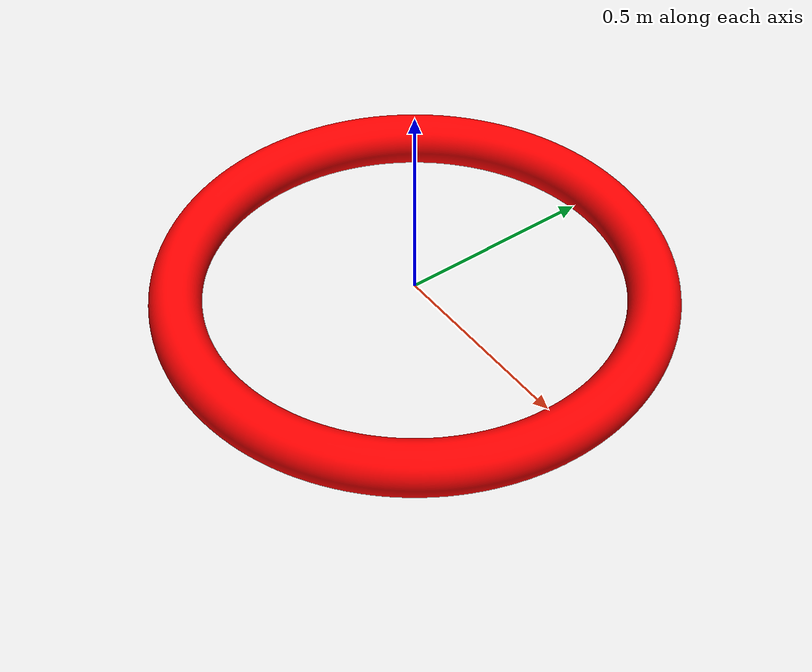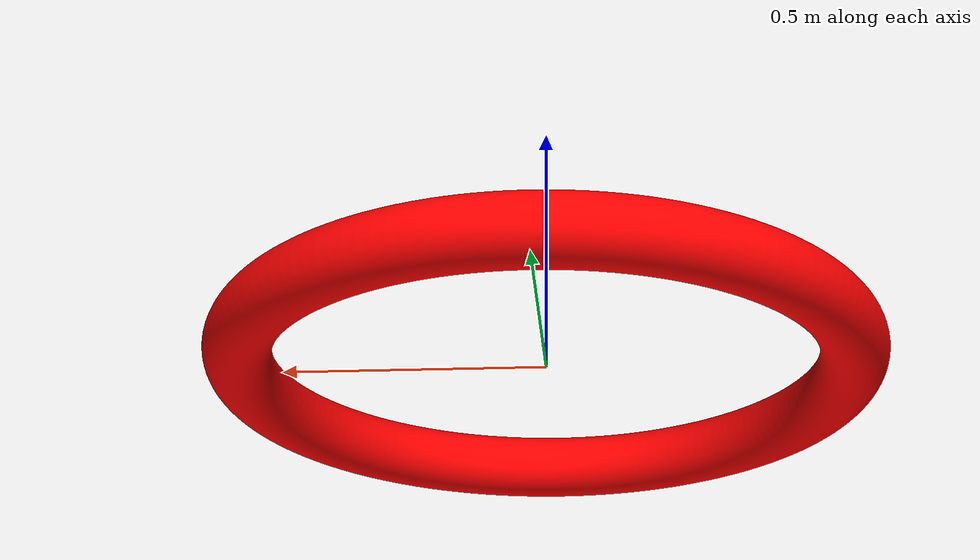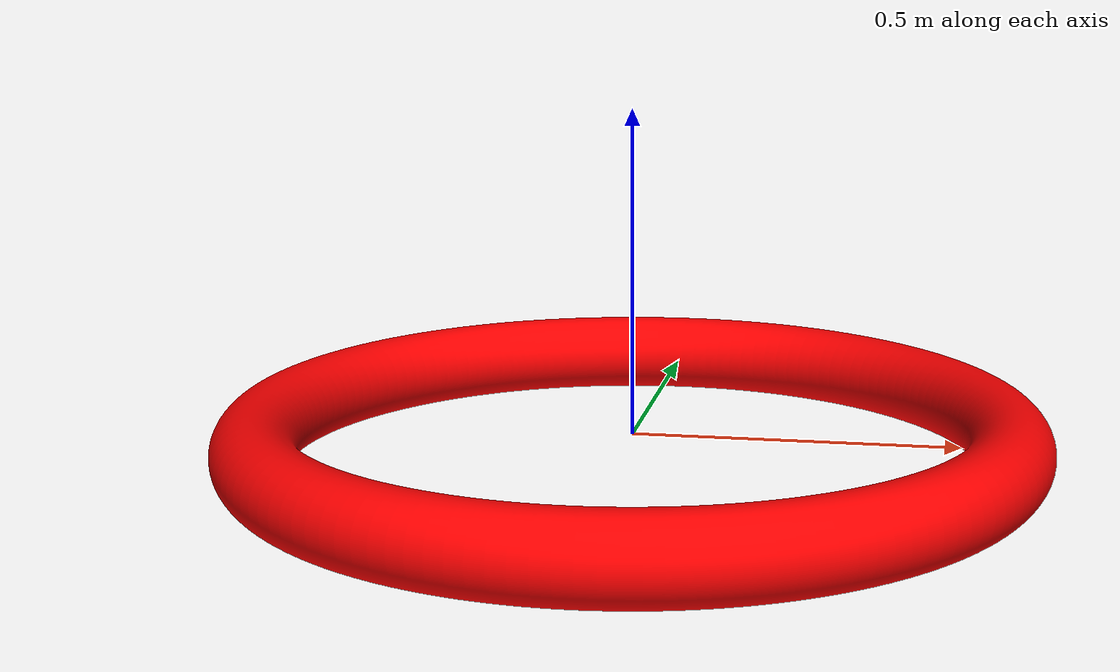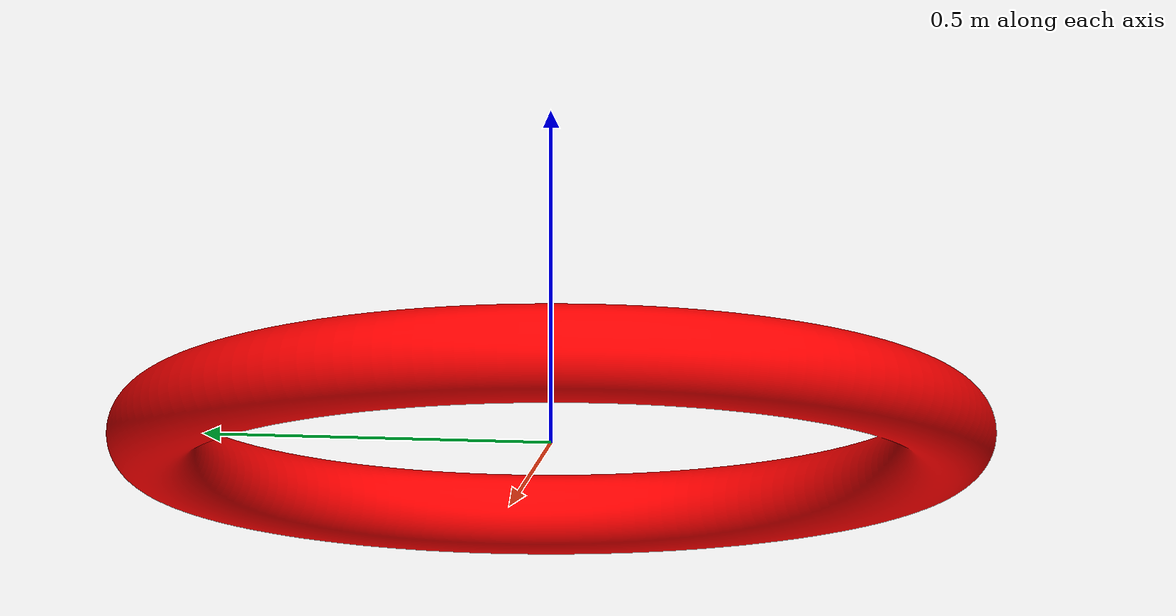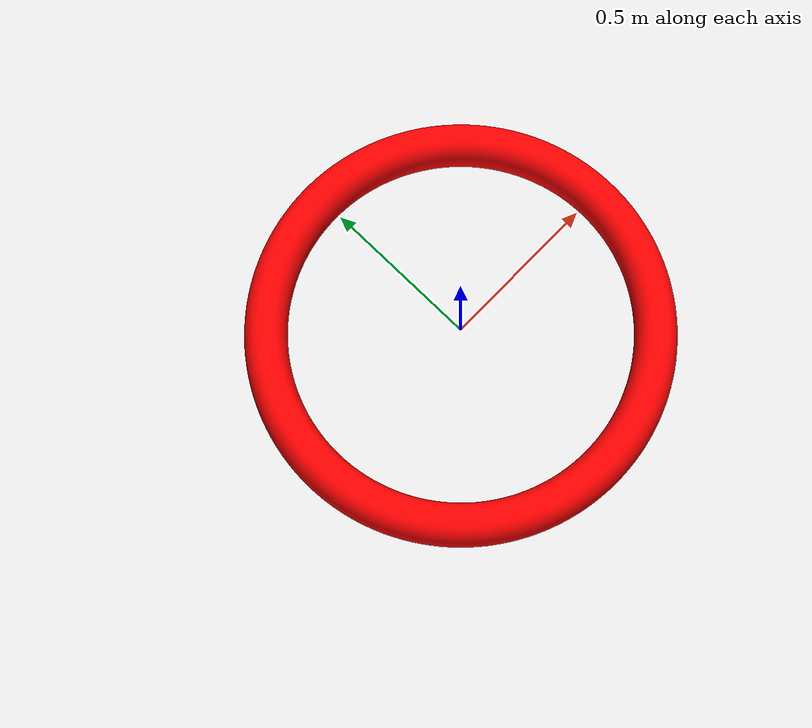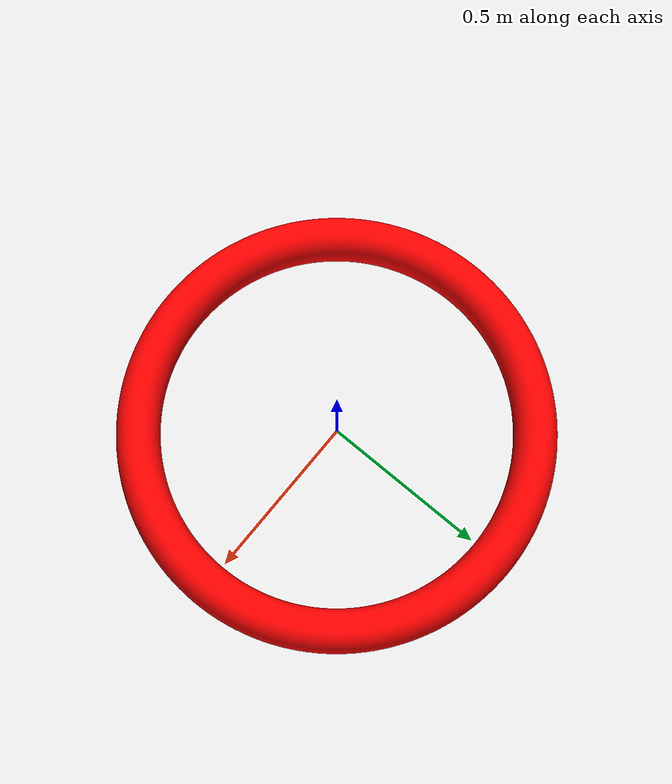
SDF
<?xml version="1.0" ?>
<sdf version="1.4">
  <model name="hoop">
  <static>true</static>
    <link name="hoop">
    <pose> 0 0 0 0 1.5707 0 </pose>
      <inertial>
        <mass>2</mass>
      </inertial>
      <visual name="visual">
      <pose> 0 0 0 0 0 0 </pose>
        <geometry>
          <mesh>
            <uri>model://hoop/meshes/HoopSTL.stl</uri>
            <scale> .005 .005 .005 </scale>
          </mesh>
        </geometry>
        <material>
          <diffuse>1 0 0 1</diffuse> <!-- Pink color -->
      </material>
      </visual>
      <collision name="collision">
        <!-- Use the same pose as the visual so they line up -->
        <pose> 0 0 0 0 0 0 </pose>
        <geometry>
          <mesh>
            <uri>model://hoop/meshes/HoopSTL.stl</uri>
            <scale> .005 .005 .005 </scale>
          </mesh>
        </geometry>
        <surface>
          <friction>
            <ode>
              <mu>0.8</mu>
              <mu2>0.8</mu2>
            </ode>
          </friction>
          <contact>
            <ode>
              <kp>1e6</kp>
              <kd>1</kd>
              <min_depth>0.001</min_depth>
              <max_vel>0.2</max_vel>
            </ode>
          </contact>
        </surface>
      </collision>
      <self_collide>false</self_collide>
      <enable_wind>false</enable_wind>
    </link>
  </model>
</sdf>
